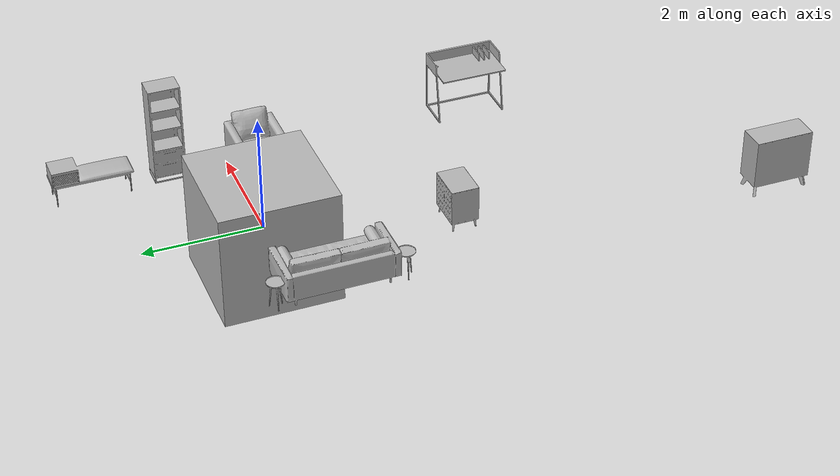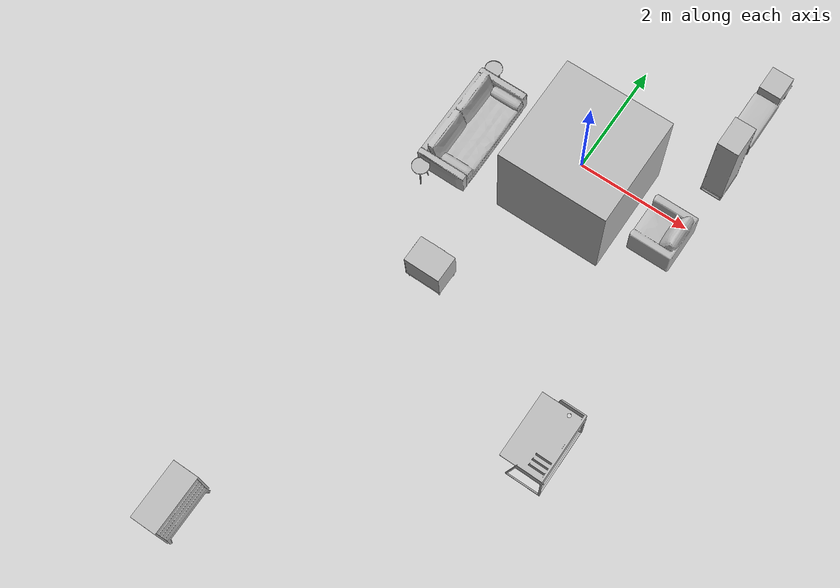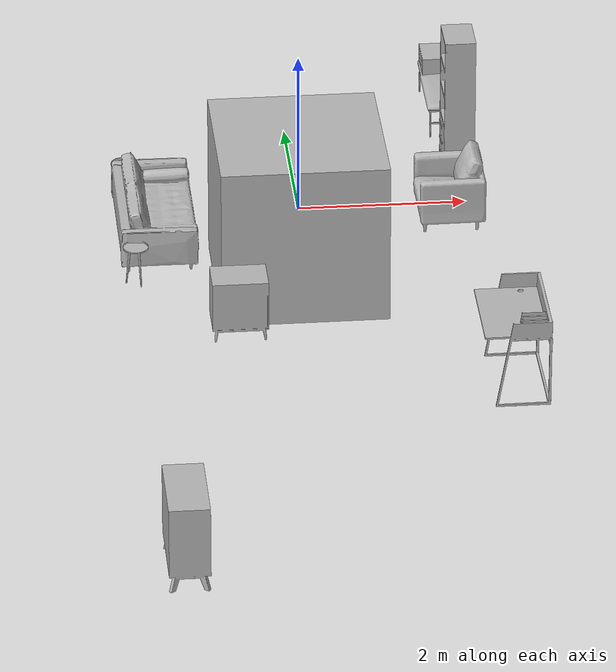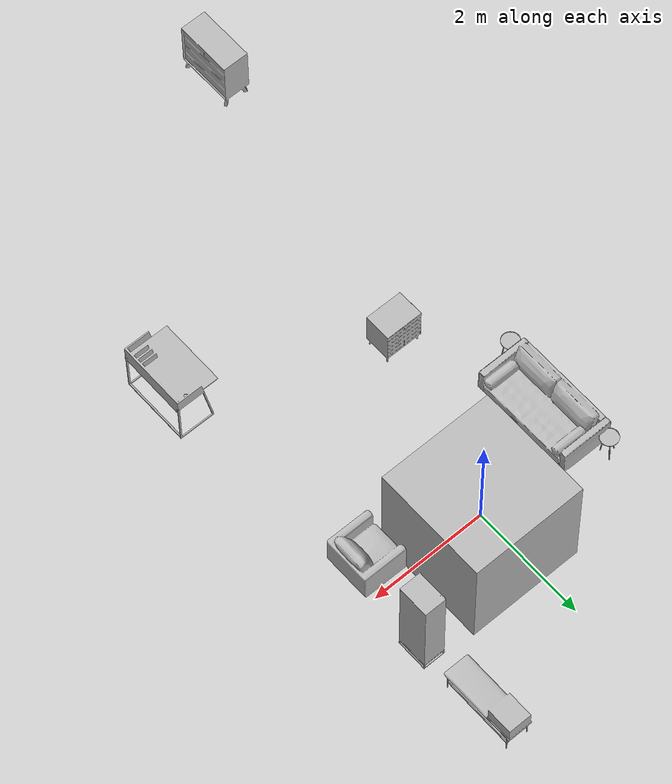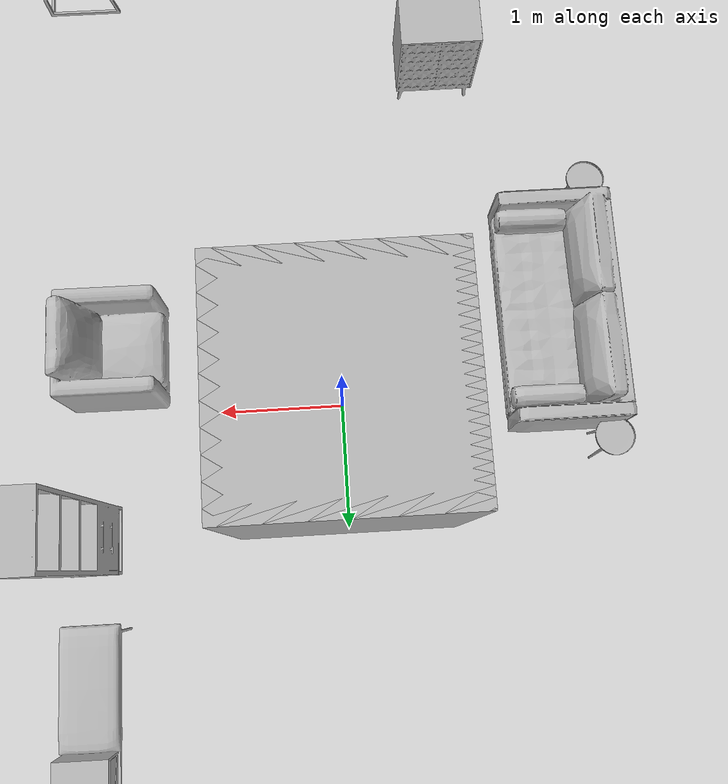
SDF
<sdf version="1.6">
 <world name="generation_rgcb031fx27r_world_24">
  <include><uri>model://sun</uri></include>
  <model name="HomeOfficeDesks_O7d77e3c4f189_lod0_5">
   <include>
    <uri>model://HomeOfficeDesks_O7d77e3c4f189_lod0</uri>
    <pose>2.1081023991107943 -4.3500000000000005 0.0 0.0 0.0 4.71</pose>
    <static>true</static>
   </include>
  </model>
  <model name="Dressers_Oaa5814ac11e9_lod0_7">
   <include>
    <uri>model://Dressers_Oaa5814ac11e9_lod0</uri>
    <pose>-1.9500000000000002 -8.15 0.0 0.0 0.0 1.57</pose>
    <static>true</static>
   </include>
  </model>
  <model name="Sofas_O567229a9f34a_lod0_8">
   <include>
    <uri>model://Sofas_O567229a9f34a_lod0</uri>
    <pose>-1.7583454251289368 -0.6000000000000001 0.0 0.0 0.0 1.57</pose>
    <static>true</static>
   </include>
  </model>
  <model name="EndTables_O7753d9b39303_lod0_9">
   <include>
    <uri>model://EndTables_O7753d9b39303_lod0</uri>
    <pose>-2.050007674098015 0.4499924749135971 0.0 0.0 0.0 1.5700000000000003</pose>
    <static>true</static>
   </include>
  </model>
  <model name="EndTables_O7753d9b39303_lod0_10">
   <include>
    <uri>model://EndTables_O7753d9b39303_lod0</uri>
    <pose>-2.050007674098015 -1.650007525086403 0.0 0.0 0.0 1.5700000000000003</pose>
    <static>true</static>
   </include>
  </model>
  <model name="VanityBenches_O5f00cb5fcbde_lod0_11">
   <include>
    <uri>model://VanityBenches_O5f00cb5fcbde_lod0</uri>
    <pose>1.9497557252645494 2.3000000000000003 0.0 0.0 0.0 4.71</pose>
    <static>true</static>
   </include>
  </model>
  <model name="Bookcases_O4e13d24e8d40_lod0_13">
   <include>
    <uri>model://Bookcases_O4e13d24e8d40_lod0</uri>
    <pose>1.999998688697815 1.0 0.0 0.0 0.0 4.71</pose>
    <static>true</static>
   </include>
  </model>
  <model name="BarCabinets_O1e58b6dec52_lod0_15">
   <include>
    <uri>model://BarCabinets_O1e58b6dec52_lod0</uri>
    <pose>-0.9499977946281434 -2.9523427680134775 0.0 0.0 0.0 3.14</pose>
    <static>true</static>
   </include>
  </model>
  <model name="LivingRoomChairs_Ob03b8af5d78f_lod0_17">
   <include>
    <uri>model://LivingRoomChairs_Ob03b8af5d78f_lod0</uri>
    <pose>1.761375054717064 -0.45 0.0 0.0 0.0 4.71</pose>
    <static>true</static>
   </include>
  </model>
  <model name="wall_0">
   <include><uri>model://generation_rgcb031fx27r_world_24/wall_0</uri><static>true</static></include>
  </model>
  <model name="wall_1">
   <include><uri>model://generation_rgcb031fx27r_world_24/wall_1</uri><static>true</static></include>
  </model>
  <model name="wall_10">
   <include><uri>model://generation_rgcb031fx27r_world_24/wall_10</uri><static>true</static></include>
  </model>
  <model name="wall_11">
   <include><uri>model://generation_rgcb031fx27r_world_24/wall_11</uri><static>true</static></include>
  </model>
  <model name="wall_12">
   <include><uri>model://generation_rgcb031fx27r_world_24/wall_12</uri><static>true</static></include>
  </model>
  <model name="wall_13">
   <include><uri>model://generation_rgcb031fx27r_world_24/wall_13</uri><static>true</static></include>
  </model>
  <model name="wall_14">
   <include><uri>model://generation_rgcb031fx27r_world_24/wall_14</uri><static>true</static></include>
  </model>
  <model name="wall_15">
   <include><uri>model://generation_rgcb031fx27r_world_24/wall_15</uri><static>true</static></include>
  </model>
  <model name="floor_Bedroom">
   <include><uri>model://generation_rgcb031fx27r_world_24/floor_Bedroom</uri><static>true</static></include>
  </model>
  <model name="floor_Living room">
   <include><uri>model://generation_rgcb031fx27r_world_24/floor_Living room</uri><static>true</static></include>
  </model>
  <model name="floor_Bathroom">
   <include><uri>model://generation_rgcb031fx27r_world_24/floor_Bathroom</uri><static>true</static></include>
  </model>
  <model name="floor_Kitchen">
   <include><uri>model://generation_rgcb031fx27r_world_24/floor_Kitchen</uri><static>true</static></include>
  </model>
 </world>
</sdf>

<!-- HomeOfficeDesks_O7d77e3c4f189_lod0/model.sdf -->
<sdf version="1.6">
	<model name="HomeOfficeDesks_O7d77e3c4f189_lod0">
		<link name="main_link">
			<visual name="visual_RootNode">
				<geometry>
					<mesh>
						<uri>model://HomeOfficeDesks_O7d77e3c4f189_lod0/meshes/visual_RootNode.dae</uri>
					</mesh>
				</geometry>
			</visual>
			<collision name="collision_RootNode_lod0_0">
				<geometry>
					<mesh>
						<uri>model://HomeOfficeDesks_O7d77e3c4f189_lod0/meshes/collision_RootNode_lod0_0.dae</uri>
					</mesh>
				</geometry>
			</collision>
		</link>
	</model>
</sdf>

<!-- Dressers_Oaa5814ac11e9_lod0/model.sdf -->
<sdf version="1.6">
	<model name="Dressers_Oaa5814ac11e9_lod0">
		<link name="main_link">
			<visual name="visual_RootNode">
				<geometry>
					<mesh>
						<uri>model://Dressers_Oaa5814ac11e9_lod0/meshes/visual_RootNode.dae</uri>
					</mesh>
				</geometry>
			</visual>
			<collision name="collision_RootNode_lod0_0">
				<geometry>
					<mesh>
						<uri>model://Dressers_Oaa5814ac11e9_lod0/meshes/collision_RootNode_lod0_0.dae</uri>
					</mesh>
				</geometry>
			</collision>
		</link>
	</model>
</sdf>

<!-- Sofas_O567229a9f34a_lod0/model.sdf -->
<sdf version="1.6">
	<model name="Sofas_O567229a9f34a_lod0">
		<link name="main_link">
			<visual name="visual_RootNode">
				<geometry>
					<mesh>
						<uri>model://Sofas_O567229a9f34a_lod0/meshes/visual_RootNode.dae</uri>
					</mesh>
				</geometry>
			</visual>
			<collision name="collision_RootNode_lod0_0">
				<geometry>
					<mesh>
						<uri>model://Sofas_O567229a9f34a_lod0/meshes/collision_RootNode_lod0_0.dae</uri>
					</mesh>
				</geometry>
			</collision>
		</link>
	</model>
</sdf>

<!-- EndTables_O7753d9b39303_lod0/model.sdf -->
<sdf version="1.6">
	<model name="EndTables_O7753d9b39303_lod0">
		<link name="main_link">
			<visual name="visual_RootNode">
				<geometry>
					<mesh>
						<uri>model://EndTables_O7753d9b39303_lod0/meshes/visual_RootNode.dae</uri>
					</mesh>
				</geometry>
			</visual>
			<collision name="collision_RootNode_lod0_0">
				<geometry>
					<mesh>
						<uri>model://EndTables_O7753d9b39303_lod0/meshes/collision_RootNode_lod0_0.dae</uri>
					</mesh>
				</geometry>
			</collision>
		</link>
	</model>
</sdf>

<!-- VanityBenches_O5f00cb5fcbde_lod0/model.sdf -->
<sdf version="1.6">
	<model name="VanityBenches_O5f00cb5fcbde_lod0">
		<link name="main_link">
			<visual name="visual_RootNode">
				<geometry>
					<mesh>
						<uri>model://VanityBenches_O5f00cb5fcbde_lod0/meshes/visual_RootNode.dae</uri>
					</mesh>
				</geometry>
			</visual>
			<collision name="collision_RootNode_lod0_0">
				<geometry>
					<mesh>
						<uri>model://VanityBenches_O5f00cb5fcbde_lod0/meshes/collision_RootNode_lod0_0.dae</uri>
					</mesh>
				</geometry>
			</collision>
		</link>
	</model>
</sdf>

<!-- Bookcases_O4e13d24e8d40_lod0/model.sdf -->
<sdf version="1.6">
	<model name="Bookcases_O4e13d24e8d40_lod0">
		<link name="main_link">
			<visual name="visual_RootNode">
				<geometry>
					<mesh>
						<uri>model://Bookcases_O4e13d24e8d40_lod0/meshes/visual_RootNode.dae</uri>
					</mesh>
				</geometry>
			</visual>
			<collision name="collision_RootNode_lod0_0">
				<geometry>
					<mesh>
						<uri>model://Bookcases_O4e13d24e8d40_lod0/meshes/collision_RootNode_lod0_0.dae</uri>
					</mesh>
				</geometry>
			</collision>
		</link>
	</model>
</sdf>

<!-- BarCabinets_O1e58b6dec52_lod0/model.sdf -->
<sdf version="1.6">
	<model name="BarCabinets_O1e58b6dec52_lod0">
		<link name="main_link">
			<visual name="visual_RootNode">
				<geometry>
					<mesh>
						<uri>model://BarCabinets_O1e58b6dec52_lod0/meshes/visual_RootNode.dae</uri>
					</mesh>
				</geometry>
			</visual>
			<collision name="collision_RootNode_lod0_0">
				<geometry>
					<mesh>
						<uri>model://BarCabinets_O1e58b6dec52_lod0/meshes/collision_RootNode_lod0_0.dae</uri>
					</mesh>
				</geometry>
			</collision>
		</link>
	</model>
</sdf>

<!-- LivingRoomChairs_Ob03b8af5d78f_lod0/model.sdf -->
<sdf version="1.6">
	<model name="LivingRoomChairs_Ob03b8af5d78f_lod0">
		<link name="main_link">
			<visual name="visual_RootNode">
				<geometry>
					<mesh>
						<uri>model://LivingRoomChairs_Ob03b8af5d78f_lod0/meshes/visual_RootNode.dae</uri>
					</mesh>
				</geometry>
			</visual>
			<collision name="collision_RootNode_lod0_0">
				<geometry>
					<mesh>
						<uri>model://LivingRoomChairs_Ob03b8af5d78f_lod0/meshes/collision_RootNode_lod0_0.dae</uri>
					</mesh>
				</geometry>
			</collision>
		</link>
	</model>
</sdf>

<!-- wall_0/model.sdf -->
<sdf version="1.6">
  <model name="wall_0">
    <static>true</static>
    <link name="link">
      <collision name="collision">
        <pose>0 0 0 0 0 0</pose>
        <geometry>
          <mesh>
            <uri>model://generation_rgcb031fx27r_world_24/wall_0/meshes/wall_0.dae</uri>
            <scale>1 1 1</scale>
          </mesh>
        </geometry>
      </collision>
      <visual name="visual">
        <meta>
          <layer>0</layer>
        </meta>
        <pose>0 0 0 0 0 0</pose>
        <geometry>
          <mesh>
            <uri>model://generation_rgcb031fx27r_world_24/wall_0/meshes/wall_0.dae</uri>
            <scale>1 1 1</scale>
          </mesh>
        </geometry>
      </visual>
    </link>
  </model>
</sdf>

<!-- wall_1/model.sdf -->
<sdf version="1.6">
  <model name="wall_1">
    <static>true</static>
    <link name="link">
      <collision name="collision">
        <pose>0 0 0 0 0 0</pose>
        <geometry>
          <mesh>
            <uri>model://generation_rgcb031fx27r_world_24/wall_1/meshes/wall_1.dae</uri>
            <scale>1 1 1</scale>
          </mesh>
        </geometry>
      </collision>
      <visual name="visual">
        <meta>
          <layer>0</layer>
        </meta>
        <pose>0 0 0 0 0 0</pose>
        <geometry>
          <mesh>
            <uri>model://generation_rgcb031fx27r_world_24/wall_1/meshes/wall_1.dae</uri>
            <scale>1 1 1</scale>
          </mesh>
        </geometry>
      </visual>
    </link>
  </model>
</sdf>

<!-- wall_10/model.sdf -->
<sdf version="1.6">
  <model name="wall_10">
    <static>true</static>
    <link name="link">
      <collision name="collision">
        <pose>0 0 0 0 0 0</pose>
        <geometry>
          <mesh>
            <uri>model://generation_rgcb031fx27r_world_24/wall_10/meshes/wall_10.dae</uri>
            <scale>1 1 1</scale>
          </mesh>
        </geometry>
      </collision>
      <visual name="visual">
        <meta>
          <layer>0</layer>
        </meta>
        <pose>0 0 0 0 0 0</pose>
        <geometry>
          <mesh>
            <uri>model://generation_rgcb031fx27r_world_24/wall_10/meshes/wall_10.dae</uri>
            <scale>1 1 1</scale>
          </mesh>
        </geometry>
      </visual>
    </link>
  </model>
</sdf>

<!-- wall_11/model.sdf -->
<sdf version="1.6">
  <model name="wall_11">
    <static>true</static>
    <link name="link">
      <collision name="collision">
        <pose>0 0 0 0 0 0</pose>
        <geometry>
          <mesh>
            <uri>model://generation_rgcb031fx27r_world_24/wall_11/meshes/wall_11.dae</uri>
            <scale>1 1 1</scale>
          </mesh>
        </geometry>
      </collision>
      <visual name="visual">
        <meta>
          <layer>0</layer>
        </meta>
        <pose>0 0 0 0 0 0</pose>
        <geometry>
          <mesh>
            <uri>model://generation_rgcb031fx27r_world_24/wall_11/meshes/wall_11.dae</uri>
            <scale>1 1 1</scale>
          </mesh>
        </geometry>
      </visual>
    </link>
  </model>
</sdf>

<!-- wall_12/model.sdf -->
<sdf version="1.6">
  <model name="wall_12">
    <static>true</static>
    <link name="link">
      <collision name="collision">
        <pose>0 0 0 0 0 0</pose>
        <geometry>
          <mesh>
            <uri>model://generation_rgcb031fx27r_world_24/wall_12/meshes/wall_12.dae</uri>
            <scale>1 1 1</scale>
          </mesh>
        </geometry>
      </collision>
      <visual name="visual">
        <meta>
          <layer>0</layer>
        </meta>
        <pose>0 0 0 0 0 0</pose>
        <geometry>
          <mesh>
            <uri>model://generation_rgcb031fx27r_world_24/wall_12/meshes/wall_12.dae</uri>
            <scale>1 1 1</scale>
          </mesh>
        </geometry>
      </visual>
    </link>
  </model>
</sdf>

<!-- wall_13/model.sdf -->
<sdf version="1.6">
  <model name="wall_13">
    <static>true</static>
    <link name="link">
      <collision name="collision">
        <pose>0 0 0 0 0 0</pose>
        <geometry>
          <mesh>
            <uri>model://generation_rgcb031fx27r_world_24/wall_13/meshes/wall_13.dae</uri>
            <scale>1 1 1</scale>
          </mesh>
        </geometry>
      </collision>
      <visual name="visual">
        <meta>
          <layer>0</layer>
        </meta>
        <pose>0 0 0 0 0 0</pose>
        <geometry>
          <mesh>
            <uri>model://generation_rgcb031fx27r_world_24/wall_13/meshes/wall_13.dae</uri>
            <scale>1 1 1</scale>
          </mesh>
        </geometry>
      </visual>
    </link>
  </model>
</sdf>

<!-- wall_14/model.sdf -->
<sdf version="1.6">
  <model name="wall_14">
    <static>true</static>
    <link name="link">
      <collision name="collision">
        <pose>0 0 0 0 0 0</pose>
        <geometry>
          <mesh>
            <uri>model://generation_rgcb031fx27r_world_24/wall_14/meshes/wall_14.dae</uri>
            <scale>1 1 1</scale>
          </mesh>
        </geometry>
      </collision>
      <visual name="visual">
        <meta>
          <layer>0</layer>
        </meta>
        <pose>0 0 0 0 0 0</pose>
        <geometry>
          <mesh>
            <uri>model://generation_rgcb031fx27r_world_24/wall_14/meshes/wall_14.dae</uri>
            <scale>1 1 1</scale>
          </mesh>
        </geometry>
      </visual>
    </link>
  </model>
</sdf>

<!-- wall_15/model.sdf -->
<sdf version="1.6">
  <model name="wall_15">
    <static>true</static>
    <link name="link">
      <collision name="collision">
        <pose>0 0 0 0 0 0</pose>
        <geometry>
          <mesh>
            <uri>model://generation_rgcb031fx27r_world_24/wall_15/meshes/wall_15.dae</uri>
            <scale>1 1 1</scale>
          </mesh>
        </geometry>
      </collision>
      <visual name="visual">
        <meta>
          <layer>0</layer>
        </meta>
        <pose>0 0 0 0 0 0</pose>
        <geometry>
          <mesh>
            <uri>model://generation_rgcb031fx27r_world_24/wall_15/meshes/wall_15.dae</uri>
            <scale>1 1 1</scale>
          </mesh>
        </geometry>
      </visual>
    </link>
  </model>
</sdf>

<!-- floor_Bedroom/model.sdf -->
<sdf version="1.6">
  <model name="floor_Bedroom">
    <static>true</static>
    <link name="link">
      <collision name="collision">
        <pose>0 0 0 0 0 0</pose>
        <geometry>
          <mesh>
            <uri>model://generation_rgcb031fx27r_world_24/floor_Bedroom/meshes/floor_Bedroom.dae</uri>
            <scale>1 1 1</scale>
          </mesh>
        </geometry>
      </collision>
      <visual name="visual">
        <meta>
          <layer>0</layer>
        </meta>
        <pose>0 0 0 0 0 0</pose>
        <geometry>
          <mesh>
            <uri>model://generation_rgcb031fx27r_world_24/floor_Bedroom/meshes/floor_Bedroom.dae</uri>
            <scale>1 1 1</scale>
          </mesh>
        </geometry>
      </visual>
    </link>
  </model>
</sdf>

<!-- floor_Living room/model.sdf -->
<sdf version="1.6">
  <model name="floor_Living room">
    <static>true</static>
    <link name="link">
      <collision name="collision">
        <pose>0 0 0 0 0 0</pose>
        <geometry>
          <mesh>
            <uri>model://generation_rgcb031fx27r_world_24/floor_Living room/meshes/floor_Living room.dae</uri>
            <scale>1 1 1</scale>
          </mesh>
        </geometry>
      </collision>
      <visual name="visual">
        <meta>
          <layer>0</layer>
        </meta>
        <pose>0 0 0 0 0 0</pose>
        <geometry>
          <mesh>
            <uri>model://generation_rgcb031fx27r_world_24/floor_Living room/meshes/floor_Living room.dae</uri>
            <scale>1 1 1</scale>
          </mesh>
        </geometry>
      </visual>
    </link>
  </model>
</sdf>

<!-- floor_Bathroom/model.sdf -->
<sdf version="1.6">
  <model name="floor_Bathroom">
    <static>true</static>
    <link name="link">
      <collision name="collision">
        <pose>0 0 0 0 0 0</pose>
        <geometry>
          <mesh>
            <uri>model://generation_rgcb031fx27r_world_24/floor_Bathroom/meshes/floor_Bathroom.dae</uri>
            <scale>1 1 1</scale>
          </mesh>
        </geometry>
      </collision>
      <visual name="visual">
        <meta>
          <layer>0</layer>
        </meta>
        <pose>0 0 0 0 0 0</pose>
        <geometry>
          <mesh>
            <uri>model://generation_rgcb031fx27r_world_24/floor_Bathroom/meshes/floor_Bathroom.dae</uri>
            <scale>1 1 1</scale>
          </mesh>
        </geometry>
      </visual>
    </link>
  </model>
</sdf>

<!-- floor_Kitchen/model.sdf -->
<sdf version="1.6">
  <model name="floor_Kitchen">
    <static>true</static>
    <link name="link">
      <collision name="collision">
        <pose>0 0 0 0 0 0</pose>
        <geometry>
          <mesh>
            <uri>model://generation_rgcb031fx27r_world_24/floor_Kitchen/meshes/floor_Kitchen.dae</uri>
            <scale>1 1 1</scale>
          </mesh>
        </geometry>
      </collision>
      <visual name="visual">
        <meta>
          <layer>0</layer>
        </meta>
        <pose>0 0 0 0 0 0</pose>
        <geometry>
          <mesh>
            <uri>model://generation_rgcb031fx27r_world_24/floor_Kitchen/meshes/floor_Kitchen.dae</uri>
            <scale>1 1 1</scale>
          </mesh>
        </geometry>
      </visual>
    </link>
  </model>
</sdf>
